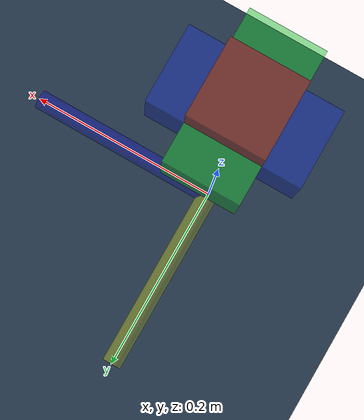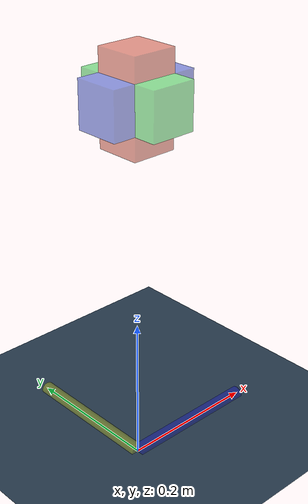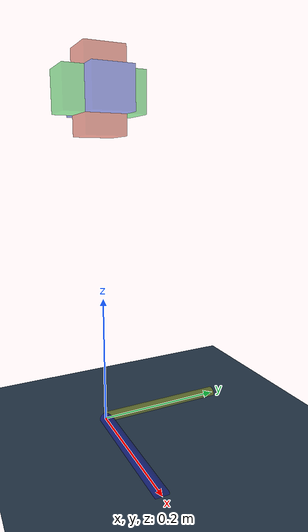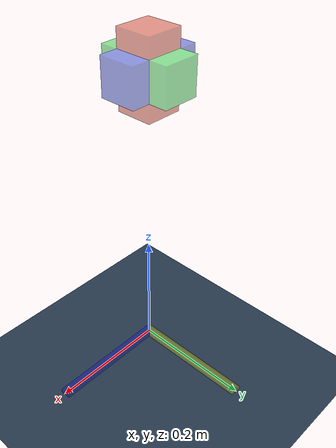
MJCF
<mujoco model="base">
  <statistic extent="2" meansize=".05" />
  <compiler angle="radian" coordinate="local" eulerseq="XYZ" />
  <option impratio="1" timestep="0.0005" solver="Newton" iterations="30" tolerance="1e-10" jacobian="sparse" cone="elliptic" integrator="implicit"/>
  <size nconmax="5000" njmax="5000" />

  <extension></extension>

  <asset>
    <texture type="skybox" builtin="gradient" rgb1="1. 1. 0.9" rgb2="0.9 0.9 0.81" width="512" height="512"/>
    <texture name="texplane" type="2d" builtin="checker" rgb1=".2 .3 .4" rgb2=".1 0.15 0.2" width="512" height="512" mark="cross" markrgb=".8 .8 .8"/>
    <material name="matplane" reflectance="0.3" texture="texplane" texrepeat="1 1" texuniform="true"/>
  </asset>

  <visual>
    <rgba haze="0.15 0.25 0.35 1"/>
    <quality shadowsize="2048"/>
    <map znear="0.001" stiffness="700" shadowscale="0.5" fogstart="10" fogend="15" zfar="40" haze="0.3"/>
  </visual>

  <actuator></actuator>

  <worldbody>
    <!-- Floor -->
    <camera mode="fixed" pos="0 -1 1.5" quat="0.866 0.5 0 0"/>
    <camera mode="fixed" pos="1. -1.2 0.8" quat="0.687 0.527 0.304 0.397"/>
    <camera mode="fixed" pos="-1.8 -1.1 .7" quat="0.73296292  0.56242221 -0.23296292 -0.30360319"/>
    <camera mode="fixed" pos="-1 -1.5 .5" quat="0.707 0.707 0 0"/>
    <camera mode="fixed" pos="9.7 -1.0 1.1" quat="0.687 0.527 0.304 0.397"/>
    <camera mode="fixed" pos="4.5 -8.0 .5" quat="0.707 0.707 0 0"/>
    <geom condim="1" material="matplane" name="floor" pos="0 0 0" size="3 3 .125" type="plane"/>
    <light directional="true" diffuse=".4 .4 .4" specular="0.1 0.1 0.1" pos="0 0 5.0" dir="0 0 -1" castshadow="false"/>
    <light directional="true" diffuse=".6 .6 .6" specular="0.2 0.2 0.2" pos="0 0 4" dir="0 0 -1"/>

    <site name="ax_y" pos="0 0.1 0" quat="0.707 0.707 0 0" size="0.01 0.1" rgba="1 1 0 0.3" type="cylinder" group="1" />
    <site name="ax_x" pos="0.1 0 0" quat="0.707 0 0.707 0" size="0.01 0.1" rgba="0 0 1 0.3" type="cylinder" group="1" />

    <body name="box_body" pos="0 0 0.5">
      <geom name="box_geom" size="0.03 0.03 0.06" type="box" contype="0" conaffinity="0" mass="1" rgba="0.8 0.2 0.1 0.5"/>
      <site name="box_site" pos="0 0 0" size="0.01" group="1" rgba="0 0 0 0"/>
      <body name="box2_body" pos="0 0 0">
        <geom name="box2_geom" size="0.03 0.06 0.03" type="box" contype="0" conaffinity="0" mass="1" rgba="0.1 0.8 0.2 0.5"/>
        <site name="box2_site" pos="0 0 0" size="0.01" group="1" rgba="0 0 0 0"/>
      </body>
    </body>

    <body name="eef_body" pos="0 0 0.5">
      <joint name="freejoint_A" type="free" limited="false" actuatorfrclimited="false"/>
      <geom name="eef_geom" size="0.06 0.03 0.03" type="box" contype="0" conaffinity="0" mass="1" rgba="0.1 0.2 0.8 0.5"/>
      <site name="eef_site" pos="0 0 0" size="0.01" group="1" rgba="0 0 0 0"/>
    </body>

    <!-- Change the joint edits in env when removing or adding new bodies -->
    <!-- Mainly for 2D case when joint editing is required -->
  </worldbody>

  <sensor>
    <torque site="box_site" name="torque_box"/>
    <force site="box_site" name="force_box"/>
  </sensor>

  <equality>
    <weld body1="eef_body" body2="box_body" anchor="0 0 0" torquescale="1" relpose="0 0 0 0 0 -1 0" solref="0.001"/>
  </equality>

  <contact></contact>

</mujoco>
